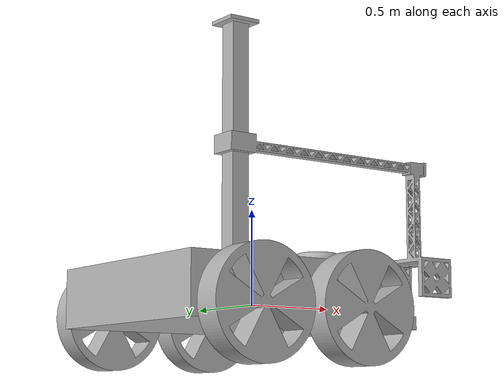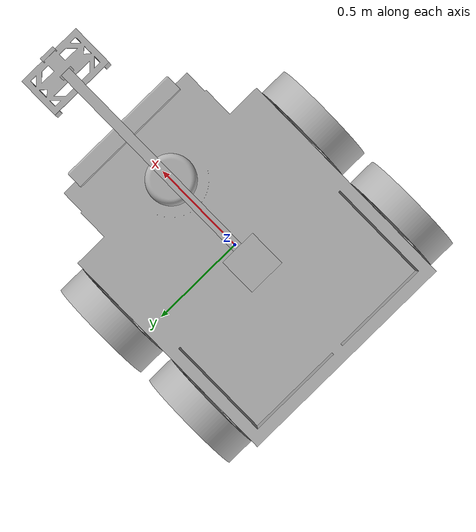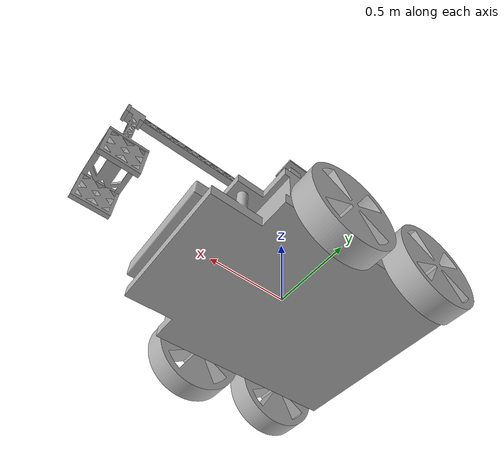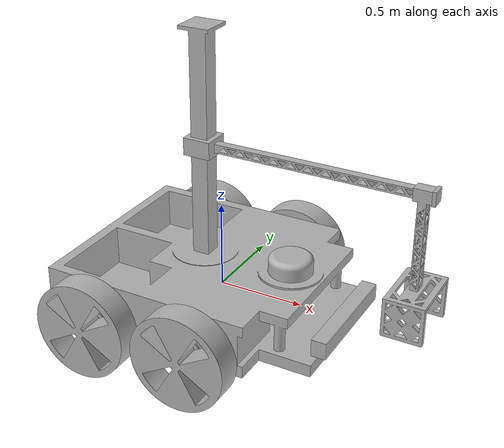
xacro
<?xml version="1.0" ?>
<robot name="robot_model9" xmlns:xacro="http://www.ros.org/wiki/xacro">

<xacro:include filename="$(find robot_model9_description)/urdf/materials.xacro" />
<xacro:include filename="$(find robot_model9_description)/urdf/robot_model9.trans" />
<xacro:include filename="$(find robot_model9_description)/urdf/robot_model9.gazebo" />
<link name="base_link">
  <inertial>
    <origin rpy="0 0 0" xyz="-0.02366164694677067 1.1990478477263248e-16 0.01830228830629723"/>
    <mass value="329.3286188584961"/>
    <inertia ixx="47.812298" ixy="-0.0" ixz="-1.107359" iyy="52.557928" iyz="-0.0" izz="93.67127"/>
  </inertial>
  <visual>
    <origin rpy="0 0 0" xyz="0 0 0"/>
    <geometry>
      <mesh filename="package://robot_model9_description/meshes/base_link.stl" scale="0.001 0.001 0.001"/>
    </geometry>
    <material name="silver_default"/>
  </visual>
  <collision>
    <origin rpy="0 0 0" xyz="0 0 0"/>
    <geometry>
      <mesh filename="package://robot_model9_description/meshes/base_link.stl" scale="0.001 0.001 0.001"/>
    </geometry>
  </collision>
</link>

<link name="rear_right_wheel_1">
  <inertial>
    <origin rpy="0 0 0" xyz="0.0 -0.07500000000000007 -3.209815078453193e-07"/>
    <mass value="29.747053613448767"/>
    <inertia ixx="0.685289" ixy="0.0" ixz="-0.0" iyy="1.259026" iyz="0.0" izz="0.685289"/>
  </inertial>
  <visual>
    <origin rpy="0 0 0" xyz="0.4575 0.61 0.049538"/>
    <geometry>
      <mesh filename="package://robot_model9_description/meshes/rear_right_wheel_1.stl" scale="0.001 0.001 0.001"/>
    </geometry>
    <material name="silver_default"/>
  </visual>
  <collision>
    <origin rpy="0 0 0" xyz="0.4575 0.61 0.049538"/>
    <geometry>
      <mesh filename="package://robot_model9_description/meshes/rear_right_wheel_1.stl" scale="0.001 0.001 0.001"/>
    </geometry>
  </collision>
</link>

<link name="front_right_wheel_1">
  <inertial>
    <origin rpy="0 0 0" xyz="2.7755575615628914e-17 -0.07499999999999984 -3.2098150780368595e-07"/>
    <mass value="29.74705361344877"/>
    <inertia ixx="0.685289" ixy="0.0" ixz="-0.0" iyy="1.259026" iyz="0.0" izz="0.685289"/>
  </inertial>
  <visual>
    <origin rpy="0 0 0" xyz="-0.1575 0.61 0.049538"/>
    <geometry>
      <mesh filename="package://robot_model9_description/meshes/front_right_wheel_1.stl" scale="0.001 0.001 0.001"/>
    </geometry>
    <material name="silver_default"/>
  </visual>
  <collision>
    <origin rpy="0 0 0" xyz="-0.1575 0.61 0.049538"/>
    <geometry>
      <mesh filename="package://robot_model9_description/meshes/front_right_wheel_1.stl" scale="0.001 0.001 0.001"/>
    </geometry>
  </collision>
</link>

<link name="front_leftt_wheel_1">
  <inertial>
    <origin rpy="0 0 0" xyz="2.7755575615628914e-17 0.07500000000000007 -3.2098150771348033e-07"/>
    <mass value="29.74705361344877"/>
    <inertia ixx="0.685289" ixy="0.0" ixz="0.0" iyy="1.259026" iyz="0.0" izz="0.685289"/>
  </inertial>
  <visual>
    <origin rpy="0 0 0" xyz="-0.1575 -0.61 0.049538"/>
    <geometry>
      <mesh filename="package://robot_model9_description/meshes/front_leftt_wheel_1.stl" scale="0.001 0.001 0.001"/>
    </geometry>
    <material name="silver_default"/>
  </visual>
  <collision>
    <origin rpy="0 0 0" xyz="-0.1575 -0.61 0.049538"/>
    <geometry>
      <mesh filename="package://robot_model9_description/meshes/front_leftt_wheel_1.stl" scale="0.001 0.001 0.001"/>
    </geometry>
  </collision>
</link>

<link name="rear_left_wheel_1">
  <inertial>
    <origin rpy="0 0 0" xyz="1.1102230246251565e-16 0.07500000000000007 -3.2098150767878586e-07"/>
    <mass value="29.747053613448767"/>
    <inertia ixx="0.685289" ixy="0.0" ixz="0.0" iyy="1.259026" iyz="0.0" izz="0.685289"/>
  </inertial>
  <visual>
    <origin rpy="0 0 0" xyz="0.4575 -0.61 0.049538"/>
    <geometry>
      <mesh filename="package://robot_model9_description/meshes/rear_left_wheel_1.stl" scale="0.001 0.001 0.001"/>
    </geometry>
    <material name="silver_default"/>
  </visual>
  <collision>
    <origin rpy="0 0 0" xyz="0.4575 -0.61 0.049538"/>
    <geometry>
      <mesh filename="package://robot_model9_description/meshes/rear_left_wheel_1.stl" scale="0.001 0.001 0.001"/>
    </geometry>
  </collision>
</link>

<link name="vertical_body_1">
  <inertial>
    <origin rpy="0 0 0" xyz="4.513906575465132e-07 0.0 0.6813364595545133"/>
    <mass value="14.466879999999998"/>
    <inertia ixx="2.239043" ixy="0.0" ixz="0.0" iyy="2.239043" iyz="0.0" izz="0.026676"/>
  </inertial>
  <visual>
    <origin rpy="0 0 0" xyz="0.108759 -0.0 -0.194"/>
    <geometry>
      <mesh filename="package://robot_model9_description/meshes/vertical_body_1.stl" scale="0.001 0.001 0.001"/>
    </geometry>
    <material name="silver_default"/>
  </visual>
  <collision>
    <origin rpy="0 0 0" xyz="0.108759 -0.0 -0.194"/>
    <geometry>
      <mesh filename="package://robot_model9_description/meshes/vertical_body_1.stl" scale="0.001 0.001 0.001"/>
    </geometry>
  </collision>
</link>

<link name="rgbd_camera_1">
  <inertial>
    <origin rpy="0 0 0" xyz="0.004767481593612399 -2.919240536805602e-19 0.04999999999999999"/>
    <mass value="6.3547497618390105"/>
    <inertia ixx="0.246993" ixy="-0.0" ixz="-0.0" iyy="0.009422" iyz="-0.0" izz="0.245912"/>
  </inertial>
  <visual>
    <origin rpy="0 0 0" xyz="-0.765 -0.0 0.05"/>
    <geometry>
      <mesh filename="package://robot_model9_description/meshes/rgbd_camera_1.stl" scale="0.001 0.001 0.001"/>
    </geometry>
    <material name="silver_default"/>
  </visual>
  <collision>
    <origin rpy="0 0 0" xyz="-0.765 -0.0 0.05"/>
    <geometry>
      <mesh filename="package://robot_model9_description/meshes/rgbd_camera_1.stl" scale="0.001 0.001 0.001"/>
    </geometry>
  </collision>
</link>

<link name="lidar_1">
  <inertial>
    <origin rpy="0 0 0" xyz="0.0 3.05380343897712e-17 0.04870026749058354"/>
    <mass value="5.051088077638525"/>
    <inertia ixx="0.023293" ixy="0.0" ixz="-0.0" iyy="0.023293" iyz="0.0" izz="0.038507"/>
  </inertial>
  <visual>
    <origin rpy="0 0 0" xyz="-0.435 -0.0 -0.202"/>
    <geometry>
      <mesh filename="package://robot_model9_description/meshes/lidar_1.stl" scale="0.001 0.001 0.001"/>
    </geometry>
    <material name="silver_default"/>
  </visual>
  <collision>
    <origin rpy="0 0 0" xyz="-0.435 -0.0 -0.202"/>
    <geometry>
      <mesh filename="package://robot_model9_description/meshes/lidar_1.stl" scale="0.001 0.001 0.001"/>
    </geometry>
  </collision>
</link>

<link name="horizontal_body_1">
  <inertial>
    <origin rpy="0 0 0" xyz="0.47423303171345044 1.9582714612255298e-17 -0.0002180056519983653"/>
    <mass value="3.938429999999996"/>
    <inertia ixx="0.007469" ixy="-0.0" ixz="0.000227" iyy="0.854176" iyz="0.0" izz="0.857558"/>
  </inertial>
  <visual>
    <origin rpy="0 0 0" xyz="0.158759 -0.0 -0.844"/>
    <geometry>
      <mesh filename="package://robot_model9_description/meshes/horizontal_body_1.stl" scale="0.001 0.001 0.001"/>
    </geometry>
    <material name="silver_default"/>
  </visual>
  <collision>
    <origin rpy="0 0 0" xyz="0.158759 -0.0 -0.844"/>
    <geometry>
      <mesh filename="package://robot_model9_description/meshes/horizontal_body_1.stl" scale="0.001 0.001 0.001"/>
    </geometry>
  </collision>
</link>

<link name="vertical_pickup_body_1">
  <inertial>
    <origin rpy="0 0 0" xyz="-0.04787887444942718 -0.05575542449825093 -0.5128020476041976"/>
    <mass value="3.3011829023328936"/>
    <inertia ixx="0.183863" ixy="7e-05" ixz="0.000668" iyy="0.158497" iyz="-0.031306" izz="0.047022"/>
  </inertial>
  <visual>
    <origin rpy="0 0 0" xyz="-1.196241 -0.0 -0.869"/>
    <geometry>
      <mesh filename="package://robot_model9_description/meshes/vertical_pickup_body_1.stl" scale="0.001 0.001 0.001"/>
    </geometry>
    <material name="silver_default"/>
  </visual>
  <collision>
    <origin rpy="0 0 0" xyz="-1.196241 -0.0 -0.869"/>
    <geometry>
      <mesh filename="package://robot_model9_description/meshes/vertical_pickup_body_1.stl" scale="0.001 0.001 0.001"/>
    </geometry>
  </collision>
</link>

<link name="gripper_1">
  <inertial>
    <origin rpy="0 0 0" xyz="4.513906619596497e-07 -0.014999999999999986 -0.1063248523600743"/>
    <mass value="1.1878142875593714"/>
    <inertia ixx="0.004456" ixy="0.0" ixz="0.0" iyy="0.009497" iyz="0.0" izz="0.005219"/>
  </inertial>
  <visual>
    <origin rpy="0 0 0" xyz="-1.148741 -0.18 -0.289"/>
    <geometry>
      <mesh filename="package://robot_model9_description/meshes/gripper_1.stl" scale="0.001 0.001 0.001"/>
    </geometry>
    <material name="silver_default"/>
  </visual>
  <collision>
    <origin rpy="0 0 0" xyz="-1.148741 -0.18 -0.289"/>
    <geometry>
      <mesh filename="package://robot_model9_description/meshes/gripper_1.stl" scale="0.001 0.001 0.001"/>
    </geometry>
  </collision>
</link>

<joint name="rear_right_wheel_joint" type="continuous">
  <origin rpy="0 0 0" xyz="-0.4575 -0.61 -0.049538"/>
  <parent link="base_link"/>
  <child link="rear_right_wheel_1"/>
  <axis xyz="0.0 1.0 0.0"/>
</joint>

<joint name="front_right_wheel_joint" type="continuous">
  <origin rpy="0 0 0" xyz="0.1575 -0.61 -0.049538"/>
  <parent link="base_link"/>
  <child link="front_right_wheel_1"/>
  <axis xyz="0.0 1.0 0.0"/>
</joint>

<joint name="front_left_wheel_joint" type="continuous">
  <origin rpy="0 0 0" xyz="0.1575 0.61 -0.049538"/>
  <parent link="base_link"/>
  <child link="front_leftt_wheel_1"/>
  <axis xyz="0.0 1.0 0.0"/>
</joint>

<joint name="rear_left_wheel_joint" type="continuous">
  <origin rpy="0 0 0" xyz="-0.4575 0.61 -0.049538"/>
  <parent link="base_link"/>
  <child link="rear_left_wheel_1"/>
  <axis xyz="0.0 1.0 0.0"/>
</joint>

<joint name="twist_joint" type="revolute">
  <origin rpy="0 0 0" xyz="-0.108759 0.0 0.194"/>
  <parent link="base_link"/>
  <child link="vertical_body_1"/>
  <axis xyz="0.0 0.0 1.0"/>
  <limit effort="100" lower="-3.141593" upper="3.141593" velocity="100"/>
</joint>

<joint name="rigid_camera_base" type="fixed">
  <origin rpy="0 0 0" xyz="0.765 0.0 -0.05"/>
  <parent link="base_link"/>
  <child link="rgbd_camera_1"/>
</joint>

<joint name="camera_optical_joint" type="fixed">
    <origin xyz="0 0 0" rpy="${-pi/2} 0 ${-pi/2}"/>
    <parent link="rgbd_camera_1"/>
    <child link="camera_rgb_frame"/>
  </joint>

  <link name="camera_rgb_frame">
  </link>

  <joint name="camera_depth_joint" type="fixed">
    <origin xyz="0 0 0" rpy="${-pi/2} 0 ${-pi/2}"/>
    <parent link="rgbd_camera_1"/>
    <child link="camera_depth_frame"/>
  </joint>

    <link name="camera_depth_frame">
  </link>

<joint name="rigid_lidar_base" type="fixed">
  <origin rpy="0 0 0" xyz="0.435 0.0 0.202"/>
  <parent link="base_link"/>
  <child link="lidar_1"/>
</joint>

<joint name="prismatic_vertical" type="prismatic">
  <origin rpy="0 0 0" xyz="-0.05 0.0 0.65"/>
  <parent link="vertical_body_1"/>
  <child link="horizontal_body_1"/>
  <axis xyz="0.0 0.0 1.0"/>
  <limit effort="5000000" lower="-0.4" upper="0.55" velocity="5000000"/>
</joint>

<joint name="prismatic_horizontal" type="prismatic">
  <origin rpy="0 0 0" xyz="1.355 0.0 0.025"/>
  <parent link="horizontal_body_1"/>
  <child link="vertical_pickup_body_1"/>
  <axis xyz="-1.0 0.0 0.0"/>
  <limit effort="100" lower="0.0" upper="1.0" velocity="100"/>
</joint>

<joint name="prismatic_gripper" type="prismatic">
  <origin rpy="0 0 0" xyz="-0.0475 0.18 -0.58"/>
  <parent link="vertical_pickup_body_1"/>
  <child link="gripper_1"/>
  <axis xyz="0.0 1.0 0.0"/>
  <limit effort="100" lower="-0.25" upper="0.0" velocity="100"/>
</joint>

</robot>

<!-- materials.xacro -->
<robot name="robot_model9" xmlns:xacro="http://www.ros.org/wiki/xacro" >

<material name="silver_default">
  <color rgba="0.700 0.700 0.700 1.000"/>
</material>

</robot>

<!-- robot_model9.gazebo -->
<robot name="robot_model9" xmlns:xacro="http://www.ros.org/wiki/xacro" >

<xacro:property name="body_color" value="Gazebo/Silver" />

<gazebo>
  <plugin filename="libgazebo_ros_control.so" name="control">
  <robotNamespace>/robot_model9</robotNamespace>
  </plugin>
</gazebo>

<gazebo>
  <plugin name="skid_steer_drive_controller" filename="libgazebo_ros_skid_steer_drive.so">
    <updateRate>100.0</updateRate>
    <robotNamespace>/</robotNamespace>
    <leftFrontJoint>front_left_wheel_joint</leftFrontJoint>
    <rightFrontJoint>front_right_wheel_joint</rightFrontJoint>
    <leftRearJoint>rear_left_wheel_joint</leftRearJoint>
    <rightRearJoint>rear_right_wheel_joint</rightRearJoint>
    <wheelSeparation>1.22</wheelSeparation>
    <wheelDiameter>0.28</wheelDiameter>
    <robotBaseFrame>base_link</robotBaseFrame>
    <torque>20</torque>
    <topicName>cmd_vel</topicName>
    <broadcastTF>false</broadcastTF>
    <commandTopic>cmd_vel</commandTopic>
    <odometryTopic>odom</odometryTopic>
    <odometryFrame>odom</odometryFrame>
    <covariance_x>0.00001</covariance_x>
    <covariance_y>0.00001</covariance_y>
    <covariance_yaw>0.00001</covariance_yaw>
  </plugin>
</gazebo>

<gazebo reference="base_link">
  <material>${body_color}</material>
  <mu1>0.2</mu1>
  <mu2>0.2</mu2>
  <selfCollide>true</selfCollide>
  <gravity>true</gravity>
</gazebo>

<gazebo reference="rear_right_wheel_1">
  <material>${body_color}</material>
  <mu1>0.2</mu1>
  <mu2>0.2</mu2>
  <selfCollide>true</selfCollide>
</gazebo>

<gazebo reference="front_right_wheel_1">
  <material>${body_color}</material>
  <mu1>0.2</mu1>
  <mu2>0.2</mu2>
  <selfCollide>true</selfCollide>
</gazebo>

<gazebo reference="front_leftt_wheel_1">
  <material>${body_color}</material>
  <mu1>0.2</mu1>
  <mu2>0.2</mu2>
  <selfCollide>true</selfCollide>
</gazebo>

<gazebo reference="rear_left_wheel_1">
  <material>${body_color}</material>
  <mu1>0.2</mu1>
  <mu2>0.2</mu2>
  <selfCollide>true</selfCollide>
</gazebo>

<gazebo reference="vertical_body_1">
  <material>${body_color}</material>
  <mu1>0.2</mu1>
  <mu2>0.2</mu2>
  <selfCollide>true</selfCollide>
</gazebo>

<gazebo reference="rgbd_camera_1">
  <material>${body_color}</material>
  <mu1>0.2</mu1>
  <mu2>0.2</mu2>
  <selfCollide>true</selfCollide>
  <sensor type="depth" name="intelrealsenseD435i">
      <always_on>1</always_on>
      <visualize>true</visualize>
      <camera>
        <horizontal_fov>1.047</horizontal_fov>
        <image>
          <width>640</width>
          <height>480</height>
          <format>R8G8B8</format>
        </image>
        <depth_camera>

        </depth_camera>
        <clip>
          <near>0.1</near>
          <far>100</far>
        </clip>
      </camera>
      <plugin name="intelrealsense" filename="libgazebo_ros_openni_kinect.so">
        <alwaysOn>true</alwaysOn>
        <updateRate>10.0</updateRate>
        <cameraName>camera</cameraName>
        <frameName>camera_depth_frame</frameName>
        <imageTopicName>/camera/color/image_raw</imageTopicName>
        <depthImageTopicName>/camera/depth/image_rect_raw</depthImageTopicName>
        <pointCloudTopicName>depth/points</pointCloudTopicName>
        <cameraInfoTopicName>/camera/color/camera_info</cameraInfoTopicName>
        <depthImageCameraInfoTopicName>/camera/depth/camera_info</depthImageCameraInfoTopicName>
        <pointCloudCutoff>0.2</pointCloudCutoff>
         <pointCloudCutoffMax>10.0</pointCloudCutoffMax>
        <hackBaseline>0.07</hackBaseline>
        <distortionK1>0.0</distortionK1>
        <distortionK2>0.0</distortionK2>
        <distortionK3>0.0</distortionK3>
        <distortionT1>0.0</distortionT1>
        <distortionT2>0.0</distortionT2>
        <CxPrime>0.0</CxPrime>
        <Cx>0.0</Cx>
        <Cy>0.0</Cy>
        <focalLength>0.0</focalLength>
      </plugin>
  </sensor>
</gazebo>

<gazebo reference="lidar_1">
  <material>${body_color}</material>
  <mu1>0.2</mu1>
  <mu2>0.2</mu2>
  <selfCollide>true</selfCollide>
  <sensor type="ray" name="head_rplidar_sensor">
      <pose>0 0 0 0 0 0</pose>
      <visualize>false</visualize>
      <update_rate>40</update_rate>
      <ray>
        <scan>
          <horizontal>
            <samples>720</samples>
            <resolution>1</resolution>
            <min_angle>-2.35619</min_angle>
            <max_angle>2.35619</max_angle>
          </horizontal>
        </scan>
        <range>
          <min>0.5</min>
          <max>20.0</max>
          <resolution>0.01</resolution>
        </range>
        <noise>
          <type>gaussian</type>
          <mean>0.0</mean>
          <stddev>0.01</stddev>
        </noise>
      </ray>
      <plugin name="gazebo_ros_head_rplidar_controller" filename="libgazebo_ros_laser.so">
        <topicName>/bot1/laser/scan</topicName>
        <frameName>lidar_1</frameName>
      </plugin>
    </sensor>
</gazebo>

<gazebo reference="horizontal_body_1">
  <material>${body_color}</material>
  <mu1>0.2</mu1>
  <mu2>0.2</mu2>
  <selfCollide>true</selfCollide>
</gazebo>

<gazebo reference="vertical_pickup_body_1">
  <material>${body_color}</material>
  <mu1>0.2</mu1>
  <mu2>0.2</mu2>
  <selfCollide>true</selfCollide>
</gazebo>

<gazebo reference="gripper_1">
  <material>${body_color}</material>
  <mu1>0.2</mu1>
  <mu2>0.2</mu2>
  <selfCollide>true</selfCollide>
</gazebo>

</robot>
